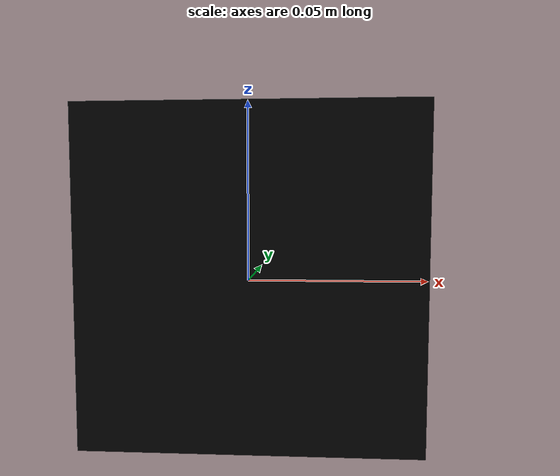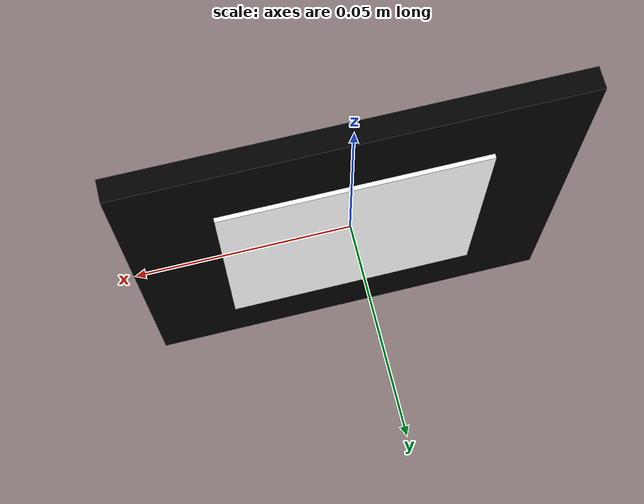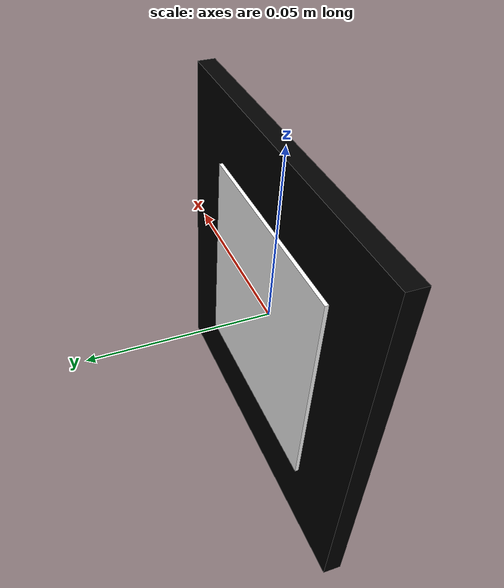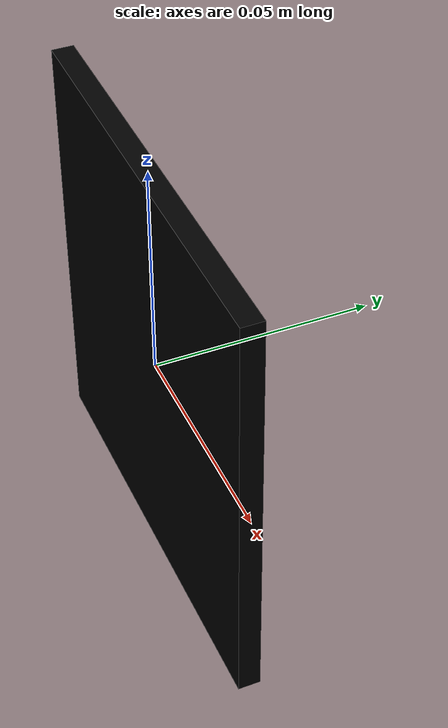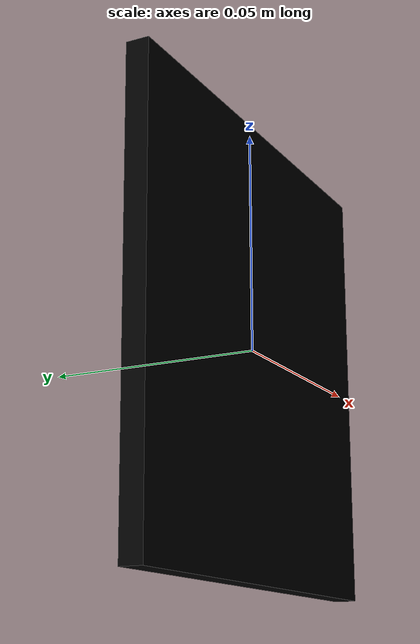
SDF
<?xml version="1.0" ?>
<sdf version="1.8">
  <model name="qr_marker">
    <static>true</static>
    <link name="link">
      <!-- Black Base -->
      <visual name="base">
        <geometry><box><size>0.1 0.005 0.1</size></box></geometry>
        <material><ambient>0 0 0 1</ambient><diffuse>0 0 0 1</diffuse></material>
      </visual>
      <!-- White "QR" Pattern (Simplified as a smaller white square) -->
      <visual name="pattern">
        <pose>0 0.003 0 0 0 0</pose>
        <geometry><box><size>0.06 0.001 0.06</size></box></geometry>
        <material><ambient>1 1 1 1</ambient><diffuse>1 1 1 1</diffuse></material>
      </visual>
    </link>
  </model>
</sdf>
